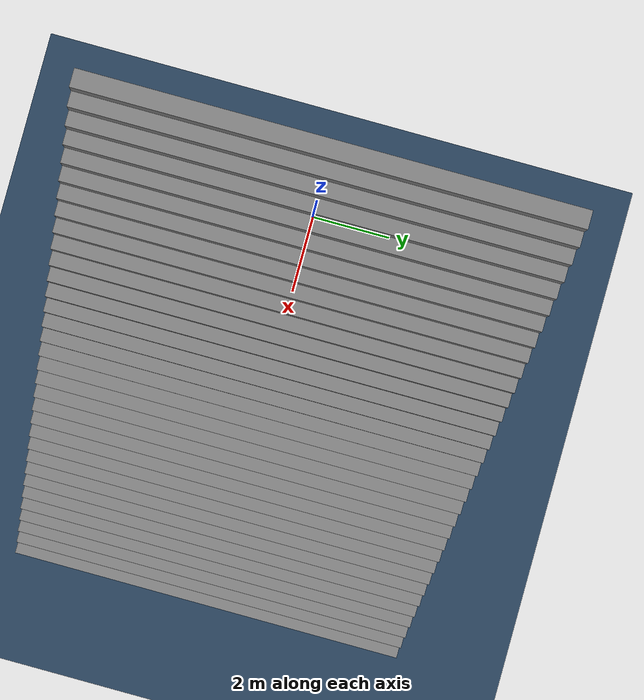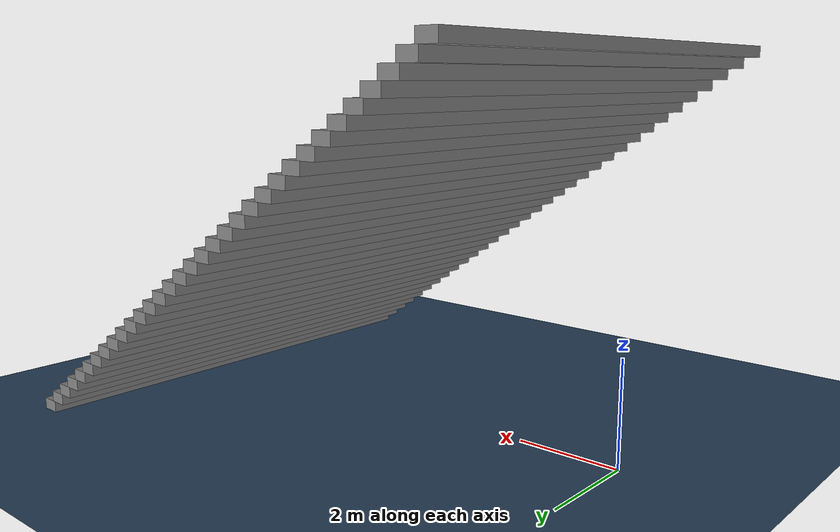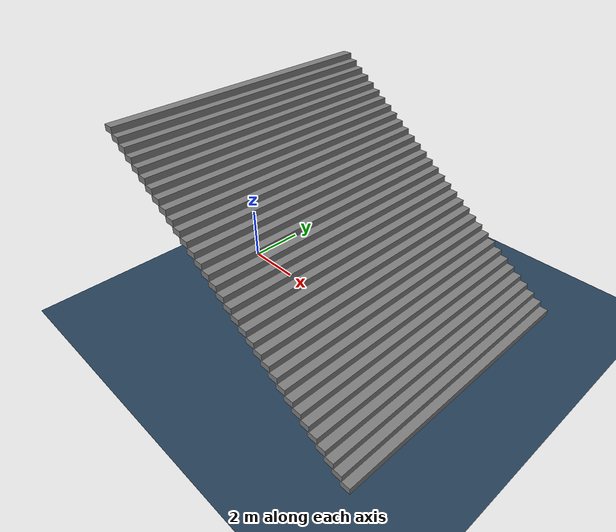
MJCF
<mujoco model="stairs_down_9">
  <!-- Terrain Type: stairs_down, Level: 9, Stairs step height: 0.2200 -->
  <statistic center="0 0 0.1" extent="0.8" />
  <visual>
    <headlight diffuse="0.6 0.6 0.6" ambient="0.3 0.3 0.3" specular="0 0 0" />
    <rgba haze="0.15 0.25 0.35 1" />
    <global azimuth="-130" elevation="-20" />
  </visual>
  <asset>
    <texture type="skybox" builtin="gradient" rgb1="0.3 0.5 0.7" rgb2="0 0 0" width="512" height="3072" />
    <texture type="2d" name="groundplane" builtin="checker" mark="edge" rgb1="0.2 0.3 0.4" rgb2="0.1 0.2 0.3" markrgb="0.8 0.8 0.8" width="300" height="300" />
    <material name="groundplane" texture="groundplane" texuniform="true" texrepeat="5 5" reflectance="0.0" />
  </asset>
  <worldbody>
    <light pos="0 0 1.5" dir="0 0 -1" directional="true" />
    <geom name="floor" size="0 0 0.05" type="plane" material="groundplane" />
    <geom pos="0.155 0.0 7.150000000000001" type="box" size="0.186 5.0 0.11000000000000001" quat="1.0 0.0 0.0 0.0" />
    <geom pos="0.46499999999999997 0.0 6.9300000000000015" type="box" size="0.186 5.0 0.11000000000000001" quat="1.0 0.0 0.0 0.0" />
    <geom pos="0.7749999999999999 0.0 6.710000000000002" type="box" size="0.186 5.0 0.11000000000000001" quat="1.0 0.0 0.0 0.0" />
    <geom pos="1.085 0.0 6.490000000000002" type="box" size="0.186 5.0 0.11000000000000001" quat="1.0 0.0 0.0 0.0" />
    <geom pos="1.395 0.0 6.270000000000002" type="box" size="0.186 5.0 0.11000000000000001" quat="1.0 0.0 0.0 0.0" />
    <geom pos="1.705 0.0 6.0500000000000025" type="box" size="0.186 5.0 0.11000000000000001" quat="1.0 0.0 0.0 0.0" />
    <geom pos="2.015 0.0 5.830000000000003" type="box" size="0.186 5.0 0.11000000000000001" quat="1.0 0.0 0.0 0.0" />
    <geom pos="2.325 0.0 5.610000000000003" type="box" size="0.186 5.0 0.11000000000000001" quat="1.0 0.0 0.0 0.0" />
    <geom pos="2.6350000000000002 0.0 5.390000000000003" type="box" size="0.186 5.0 0.11000000000000001" quat="1.0 0.0 0.0 0.0" />
    <geom pos="2.9450000000000003 0.0 5.1700000000000035" type="box" size="0.186 5.0 0.11000000000000001" quat="1.0 0.0 0.0 0.0" />
    <geom pos="3.2550000000000003 0.0 4.950000000000004" type="box" size="0.186 5.0 0.11000000000000001" quat="1.0 0.0 0.0 0.0" />
    <geom pos="3.5650000000000004 0.0 4.730000000000004" type="box" size="0.186 5.0 0.11000000000000001" quat="1.0 0.0 0.0 0.0" />
    <geom pos="3.8750000000000004 0.0 4.510000000000004" type="box" size="0.186 5.0 0.11000000000000001" quat="1.0 0.0 0.0 0.0" />
    <geom pos="4.1850000000000005 0.0 4.2900000000000045" type="box" size="0.186 5.0 0.11000000000000001" quat="1.0 0.0 0.0 0.0" />
    <geom pos="4.495 0.0 4.070000000000005" type="box" size="0.186 5.0 0.11000000000000001" quat="1.0 0.0 0.0 0.0" />
    <geom pos="4.805 0.0 3.8500000000000045" type="box" size="0.186 5.0 0.11000000000000001" quat="1.0 0.0 0.0 0.0" />
    <geom pos="5.114999999999999 0.0 3.6300000000000043" type="box" size="0.186 5.0 0.11000000000000001" quat="1.0 0.0 0.0 0.0" />
    <geom pos="5.424999999999999 0.0 3.410000000000004" type="box" size="0.186 5.0 0.11000000000000001" quat="1.0 0.0 0.0 0.0" />
    <geom pos="5.7349999999999985 0.0 3.190000000000004" type="box" size="0.186 5.0 0.11000000000000001" quat="1.0 0.0 0.0 0.0" />
    <geom pos="6.044999999999998 0.0 2.9700000000000037" type="box" size="0.186 5.0 0.11000000000000001" quat="1.0 0.0 0.0 0.0" />
    <geom pos="6.354999999999998 0.0 2.7500000000000036" type="box" size="0.186 5.0 0.11000000000000001" quat="1.0 0.0 0.0 0.0" />
    <geom pos="6.664999999999997 0.0 2.5300000000000034" type="box" size="0.186 5.0 0.11000000000000001" quat="1.0 0.0 0.0 0.0" />
    <geom pos="6.974999999999997 0.0 2.310000000000003" type="box" size="0.186 5.0 0.11000000000000001" quat="1.0 0.0 0.0 0.0" />
    <geom pos="7.284999999999997 0.0 2.090000000000003" type="box" size="0.186 5.0 0.11000000000000001" quat="1.0 0.0 0.0 0.0" />
    <geom pos="7.594999999999996 0.0 1.870000000000003" type="box" size="0.186 5.0 0.11000000000000001" quat="1.0 0.0 0.0 0.0" />
    <geom pos="7.904999999999996 0.0 1.650000000000003" type="box" size="0.186 5.0 0.11000000000000001" quat="1.0 0.0 0.0 0.0" />
    <geom pos="8.214999999999996 0.0 1.430000000000003" type="box" size="0.186 5.0 0.11000000000000001" quat="1.0 0.0 0.0 0.0" />
    <geom pos="8.524999999999997 0.0 1.210000000000003" type="box" size="0.186 5.0 0.11000000000000001" quat="1.0 0.0 0.0 0.0" />
    <geom pos="8.834999999999997 0.0 0.9900000000000031" type="box" size="0.186 5.0 0.11000000000000001" quat="1.0 0.0 0.0 0.0" />
    <geom pos="9.144999999999998 0.0 0.7700000000000031" type="box" size="0.186 5.0 0.11000000000000001" quat="1.0 0.0 0.0 0.0" />
    <geom pos="9.454999999999998 0.0 0.5500000000000032" type="box" size="0.186 5.0 0.11000000000000001" quat="1.0 0.0 0.0 0.0" />
    <geom pos="9.764999999999999 0.0 0.3300000000000031" type="box" size="0.186 5.0 0.11000000000000001" quat="1.0 0.0 0.0 0.0" />
    <geom pos="10.075 0.0 0.1100000000000031" type="box" size="0.186 5.0 0.11000000000000001" quat="1.0 0.0 0.0 0.0" />
  </worldbody>
</mujoco>
